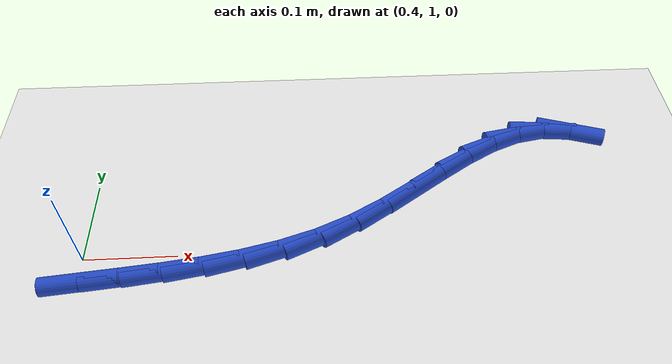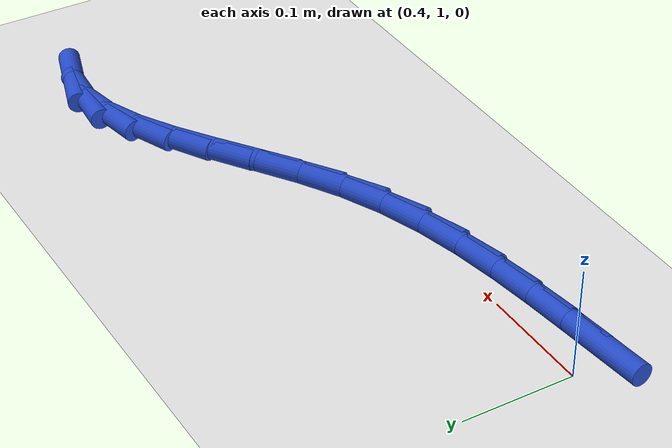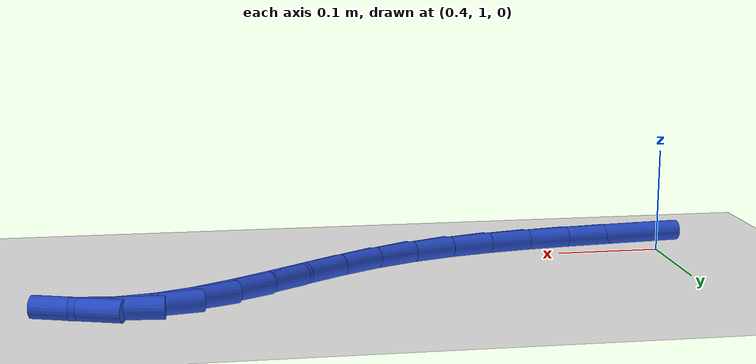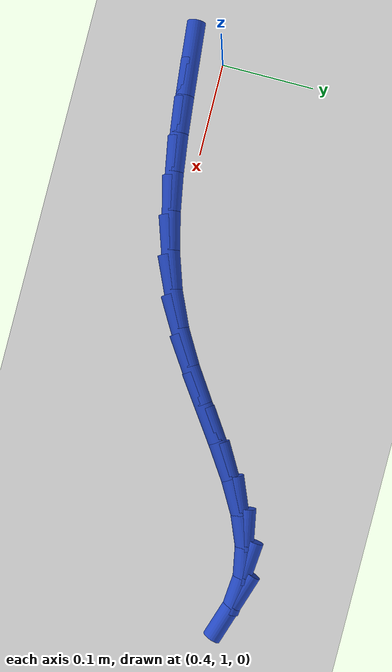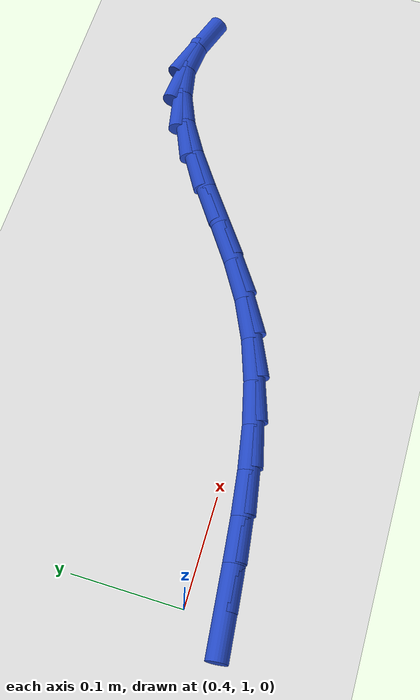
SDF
<sdf version="1.6">
 <world name="default">
  <model name="ground_plane">
   <static>1</static>
   <link name="link">
    <collision name="collision">
     <geometry><plane><normal>0 0 1</normal><size>100 100</size></plane></geometry>
     <surface><friction><ode><mu>100</mu><mu2>50</mu2></ode></friction></surface>
    </collision>
    <visual name="visual">
     <cast_shadows>0</cast_shadows>
     <geometry><plane><normal>0 0 1</normal><size>100 100</size></plane></geometry>
     <material>
      <script><uri>file://media/materials/scripts/gazebo.material</uri><name>Gazebo/WhiteGlow</name></script>
     </material>
    </visual>
   </link>
  </model>
  <model name="line">
   <link name="link_30">
    <pose>0.4057805125070101 0.9659830157811089 0.01 0 1.57 0.09851588791789956</pose>
    <collision name="collision">
     <geometry><cylinder><radius>0.01</radius><length>0.08</length></cylinder></geometry>
    </collision>
    <visual name="visual">
     <material>
      <script><name>Gazebo/Blue</name><uri>file://media/materials/scripts/gazebo.material</uri></script>
     </material>
     <geometry><cylinder><radius>0.01</radius><length>0.08</length></cylinder></geometry>
    </visual>
   </link>
   <link name="link_31">
    <pose>0.4459349562235351 0.9699517140144069 0.01 0 1.57 0.10594369424999343</pose>
    <collision name="collision">
     <geometry><cylinder><radius>0.01</radius><length>0.08</length></cylinder></geometry>
    </collision>
    <visual name="visual">
     <material>
      <script><name>Gazebo/Blue</name><uri>file://media/materials/scripts/gazebo.material</uri></script>
     </material>
     <geometry><cylinder><radius>0.01</radius><length>0.08</length></cylinder></geometry>
    </visual>
   </link>
   <link name="link_32">
    <pose>0.4868553339175375 0.9743032628839029 0.01 0 1.57 0.13201102547973598</pose>
    <collision name="collision">
     <geometry><cylinder><radius>0.01</radius><length>0.08</length></cylinder></geometry>
    </collision>
    <visual name="visual">
     <material>
      <script><name>Gazebo/Blue</name><uri>file://media/materials/scripts/gazebo.material</uri></script>
     </material>
     <geometry><cylinder><radius>0.01</radius><length>0.08</length></cylinder></geometry>
    </visual>
   </link>
   <link name="link_33">
    <pose>0.5281094993523756 0.9797811253390936 0.01 0 1.57 0.1766708921187316</pose>
    <collision name="collision">
     <geometry><cylinder><radius>0.01</radius><length>0.08</length></cylinder></geometry>
    </collision>
    <visual name="visual">
     <material>
      <script><name>Gazebo/Blue</name><uri>file://media/materials/scripts/gazebo.material</uri></script>
     </material>
     <geometry><cylinder><radius>0.01</radius><length>0.08</length></cylinder></geometry>
    </visual>
   </link>
   <link name="link_34">
    <pose>0.5692653062914076 0.9871287643294749 0.01 0 1.57 0.24044559175090227</pose>
    <collision name="collision">
     <geometry><cylinder><radius>0.01</radius><length>0.08</length></cylinder></geometry>
    </collision>
    <visual name="visual">
     <material>
      <script><name>Gazebo/Blue</name><uri>file://media/materials/scripts/gazebo.material</uri></script>
     </material>
     <geometry><cylinder><radius>0.01</radius><length>0.08</length></cylinder></geometry>
    </visual>
   </link>
   <link name="link_35">
    <pose>0.6098906084979907 0.9970896428045426 0.01 0 1.57 0.3239431386012435</pose>
    <collision name="collision">
     <geometry><cylinder><radius>0.01</radius><length>0.08</length></cylinder></geometry>
    </collision>
    <visual name="visual">
     <material>
      <script><name>Gazebo/Blue</name><uri>file://media/materials/scripts/gazebo.material</uri></script>
     </material>
     <geometry><cylinder><radius>0.01</radius><length>0.08</length></cylinder></geometry>
    </visual>
   </link>
   <link name="link_36">
    <pose>0.6495532597354834 1.0104072237137927 0.01 0 1.57 0.42699493769528746</pose>
    <collision name="collision">
     <geometry><cylinder><radius>0.01</radius><length>0.08</length></cylinder></geometry>
    </collision>
    <visual name="visual">
     <material>
      <script><name>Gazebo/Blue</name><uri>file://media/materials/scripts/gazebo.material</uri></script>
     </material>
     <geometry><cylinder><radius>0.01</radius><length>0.08</length></cylinder></geometry>
    </visual>
   </link>
   <link name="link_37">
    <pose>0.6878226032099425 1.0278193498795178 0.01 0 1.57 0.5289797049309015</pose>
    <collision name="collision">
     <geometry><cylinder><radius>0.01</radius><length>0.08</length></cylinder></geometry>
    </collision>
    <visual name="visual">
     <material>
      <script><name>Gazebo/Blue</name><uri>file://media/materials/scripts/gazebo.material</uri></script>
     </material>
     <geometry><cylinder><radius>0.01</radius><length>0.08</length></cylinder></geometry>
    </visual>
   </link>
   <link name="link_38">
    <pose>0.724483791802886 1.0492495475820838 0.01 0 1.57 0.5917942028472519</pose>
    <collision name="collision">
     <geometry><cylinder><radius>0.01</radius><length>0.08</length></cylinder></geometry>
    </collision>
    <visual name="visual">
     <material>
      <script><name>Gazebo/Blue</name><uri>file://media/materials/scripts/gazebo.material</uri></script>
     </material>
     <geometry><cylinder><radius>0.01</radius><length>0.08</length></cylinder></geometry>
    </visual>
   </link>
   <link name="link_39">
    <pose>0.7597617642624124 1.0729618952328268 0.01 0 1.57 0.613378420275824</pose>
    <collision name="collision">
     <geometry><cylinder><radius>0.01</radius><length>0.08</length></cylinder></geometry>
    </collision>
    <visual name="visual">
     <material>
      <script><name>Gazebo/Blue</name><uri>file://media/materials/scripts/gazebo.material</uri></script>
     </material>
     <geometry><cylinder><radius>0.01</radius><length>0.08</length></cylinder></geometry>
    </visual>
   </link>
   <link name="link_40">
    <pose>0.7939349946215692 1.0970184660826658 0.01 0 1.57 0.5927945480074778</pose>
    <collision name="collision">
     <geometry><cylinder><radius>0.01</radius><length>0.08</length></cylinder></geometry>
    </collision>
    <visual name="visual">
     <material>
      <script><name>Gazebo/Blue</name><uri>file://media/materials/scripts/gazebo.material</uri></script>
     </material>
     <geometry><cylinder><radius>0.01</radius><length>0.08</length></cylinder></geometry>
    </visual>
   </link>
   <link name="link_41">
    <pose>0.8272819569134042 1.1194813333825184 0.01 0 1.57 0.5234759370524045</pose>
    <collision name="collision">
     <geometry><cylinder><radius>0.01</radius><length>0.08</length></cylinder></geometry>
    </collision>
    <visual name="visual">
     <material>
      <script><name>Gazebo/Blue</name><uri>file://media/materials/scripts/gazebo.material</uri></script>
     </material>
     <geometry><cylinder><radius>0.01</radius><length>0.08</length></cylinder></geometry>
    </visual>
   </link>
   <link name="link_42">
    <pose>0.8600811251709655 1.1384125703833032 0.01 0 1.57 0.39236778417497653</pose>
    <collision name="collision">
     <geometry><cylinder><radius>0.01</radius><length>0.08</length></cylinder></geometry>
    </collision>
    <visual name="visual">
     <material>
      <script><name>Gazebo/Blue</name><uri>file://media/materials/scripts/gazebo.material</uri></script>
     </material>
     <geometry><cylinder><radius>0.01</radius><length>0.08</length></cylinder></geometry>
    </visual>
   </link>
   <link name="link_43">
    <pose>0.8926109734273009 1.1518742503359383 0.01 0 1.57 0.18395617845024453</pose>
    <collision name="collision">
     <geometry><cylinder><radius>0.01</radius><length>0.08</length></cylinder></geometry>
    </collision>
    <visual name="visual">
     <material>
      <script><name>Gazebo/Blue</name><uri>file://media/materials/scripts/gazebo.material</uri></script>
     </material>
     <geometry><cylinder><radius>0.01</radius><length>0.08</length></cylinder></geometry>
    </visual>
   </link>
   <link name="link_44">
    <pose>0.9251499757154581 1.1579284464913413 0.01 0 1.57 -0.0884308134386021</pose>
    <collision name="collision">
     <geometry><cylinder><radius>0.01</radius><length>0.08</length></cylinder></geometry>
    </collision>
    <visual name="visual">
     <material>
      <script><name>Gazebo/Blue</name><uri>file://media/materials/scripts/gazebo.material</uri></script>
     </material>
     <geometry><cylinder><radius>0.01</radius><length>0.08</length></cylinder></geometry>
    </visual>
   </link>
   <link name="link_45">
    <pose>0.9579584021648121 1.1550195842541227 0.01 0 1.57 -0.3156413184015592</pose>
    <collision name="collision">
     <geometry><cylinder><radius>0.01</radius><length>0.08</length></cylinder></geometry>
    </collision>
    <visual name="visual">
     <material>
      <script><name>Gazebo/Blue</name><uri>file://media/materials/scripts/gazebo.material</uri></script>
     </material>
     <geometry><cylinder><radius>0.01</radius><length>0.08</length></cylinder></geometry>
    </visual>
   </link>
  </model>
 </world>
</sdf>
